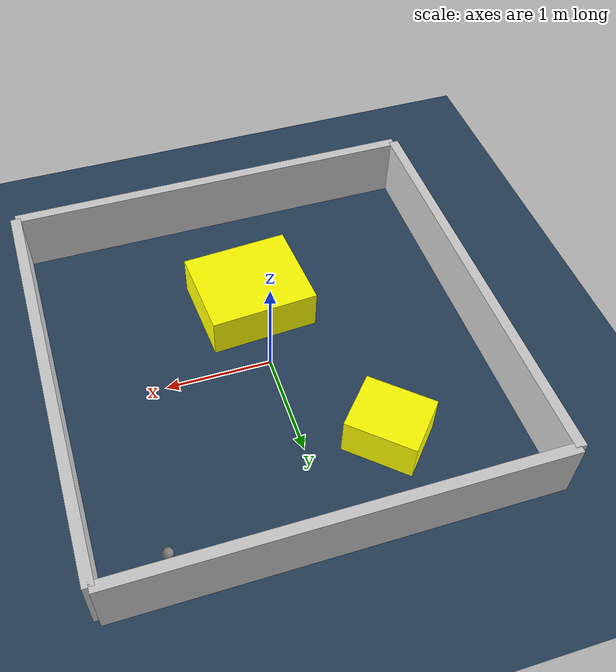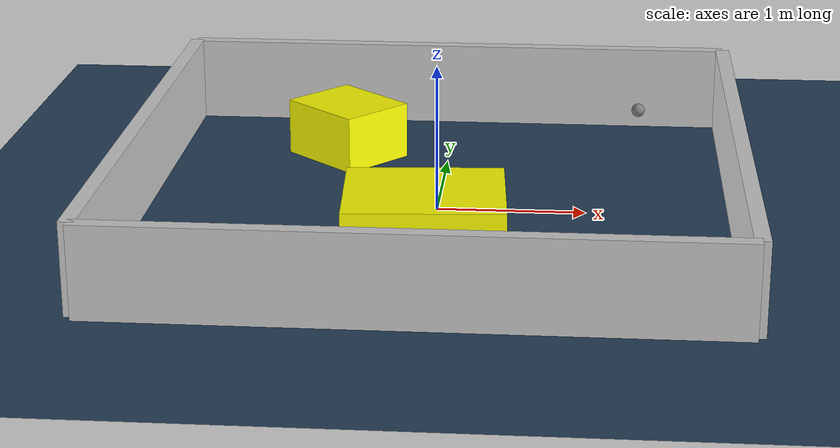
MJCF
<?xml version="1.0" ?>
<mujoco model="generated_environment">
  <option timestep="0.01" integrator="RK4" cone="elliptic"/>
  <default>
    <geom density="1"/>
  </default>
  <asset>
    <texture builtin="gradient" height="3072" rgb1="0.3 0.5 0.7" rgb2="0 0 0" type="skybox" width="512"/>
    <texture builtin="checker" height="300" mark="edge" markrgb="0.8 0.8 0.8" name="groundplane" rgb1="0.2 0.3 0.4" rgb2="0.1 0.2 0.3" type="2d" width="300"/>
    <material name="groundplane" reflectance="0.2" texrepeat="5 5" texture="groundplane" texuniform="true"/>
    <material name="robot" rgba="0.0 1.0 0.0 1"/>
  </asset>
  <worldbody>
    <light dir="0 0 -1" directional="true" pos="0 0 1.5"/>
    <geom condim="4" friction="1.0 0.005 0.001" material="groundplane" name="floor" size="0 0 0.05" type="plane"/>
    <body name="walls">
      <geom name="wall_1" condim="4" pos="-2.0 0.0 0.3" rgba="0.800000011920929 0.800000011920929 0.800000011920929 1.0" size="0.05 2.0 0.3" type="box"/>
      <geom name="wall_2" condim="4" pos="2.0 0.0 0.3" rgba="0.800000011920929 0.800000011920929 0.800000011920929 1.0" size="0.05 2.0 0.3" type="box"/>
      <geom name="wall_3" condim="4" pos="0.0 -2.0 0.3" rgba="0.800000011920929 0.800000011920929 0.800000011920929 1.0" size="2.0 0.05 0.3" type="box"/>
      <geom name="wall_4" condim="4" pos="0.0 2.0 0.3" rgba="0.800000011920929 0.800000011920929 0.800000011920929 1.0" size="2.0 0.05 0.3" type="box"/>
    </body>
    <body name="robot">
      <joint name="joint_x" type="slide" pos="0 0 0" axis="1 0 0"/>
      <joint name="joint_y" type="slide" pos="0 0 0" axis="0 1 0"/>
      <geom name="robot" type="sphere" pos="1.3784510953136304 1.7097466862801833 0.2" size="0.05" mass="5." friction="1.0 0.005 0.0001" condim="4"/>
      <site name="sensor_ball"/>
    </body>
    <body name="obstacle_1_movable">
      <geom name="obstacle_1_movable" condim="4" pos="-0.7355658109821195 1.1147539902088972 0.2" euler="0 0 317.9486069190885" friction="1.0 0.005 0.001" rgba="1 1 0 1" size="0.32925952610278636 0.277449400912183 0.2" type="box" mass="0.1"/>
      <joint type="free"/>
    </body>
    <body name="obstacle_2_movable">
      <geom name="obstacle_2_movable" condim="4" pos="-0.023281458613302553 -0.7380806571145907 0.2" euler="0 0 183.87906223534526" friction="1.0 0.005 0.001" rgba="1 1 0 1" size="0.5159894739132856 0.4380818213672746 0.2" type="box" mass="0.1"/>
      <joint type="free"/>
    </body>
  </worldbody>
  <actuator>
    <motor name="actuator_x" joint="joint_x" gear="1" ctrlrange="-1 1"/>
    <motor name="actuator_y" joint="joint_y" gear="1" ctrlrange="-1 1"/>
  </actuator>
</mujoco>
